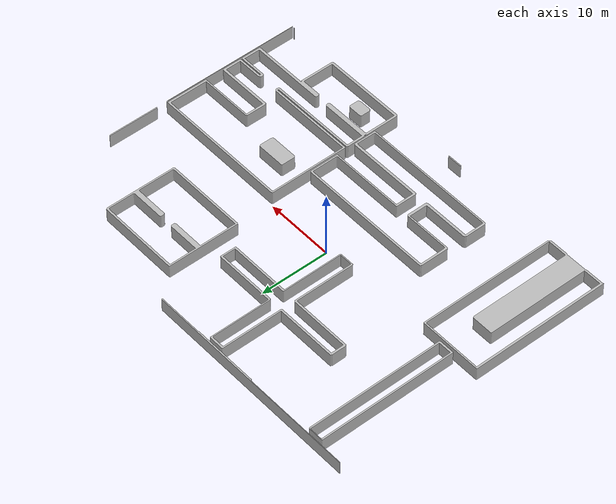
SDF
<?xml version="1.0" ?>
<sdf version="1.4">
  <model name="playground">
    <link name="link">
      <inertial>
        <mass>1</mass>
        <inertia>
          <ixx>0.0</ixx>
          <ixy>0.0</ixy>
          <ixz>0.0</ixz>
          <iyy>0.0</iyy>
          <iyz>0.0</iyz>
          <izz>0.0</izz>
        </inertia>
      </inertial>
      <collision name="collision">
        <pose>-30.858 20.62 0 0 0 0</pose>
        <geometry>
          <mesh>
            <uri>model://playground/playground.stl</uri>
          </mesh>
        </geometry>
      </collision>
      <visual name="visual">
        <pose>-30.858 20.62 0 0 0 0</pose>
        <geometry>
          <mesh>
            <uri>model://playground/playground.stl</uri>
          </mesh>
        </geometry>
      </visual>
    </link>
    <static>1</static>
  </model>
</sdf>
